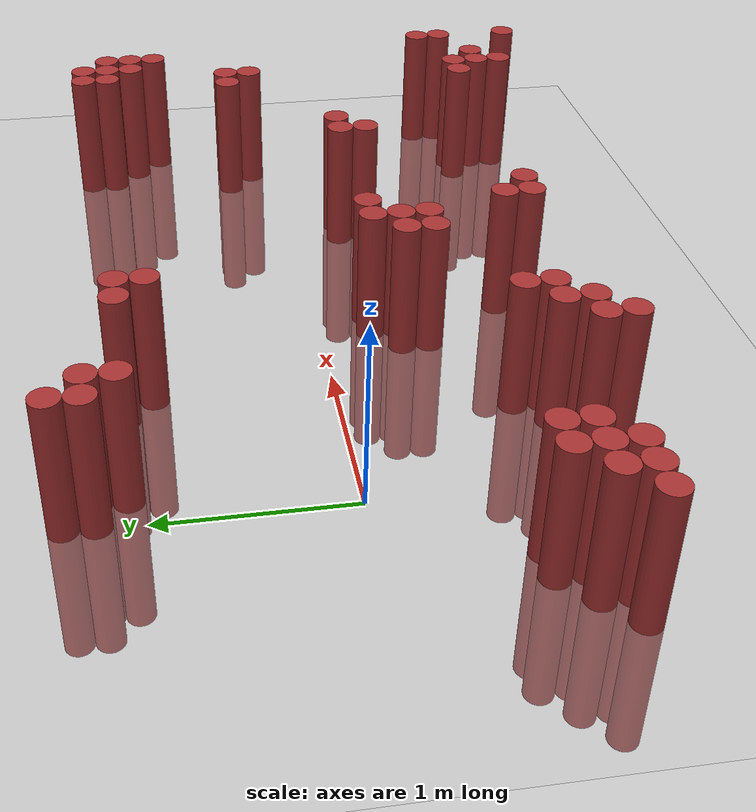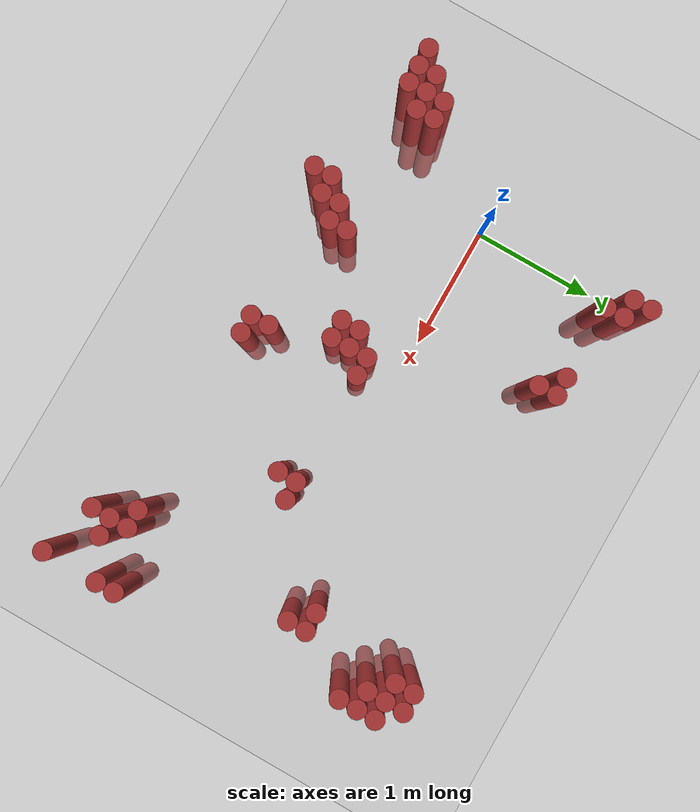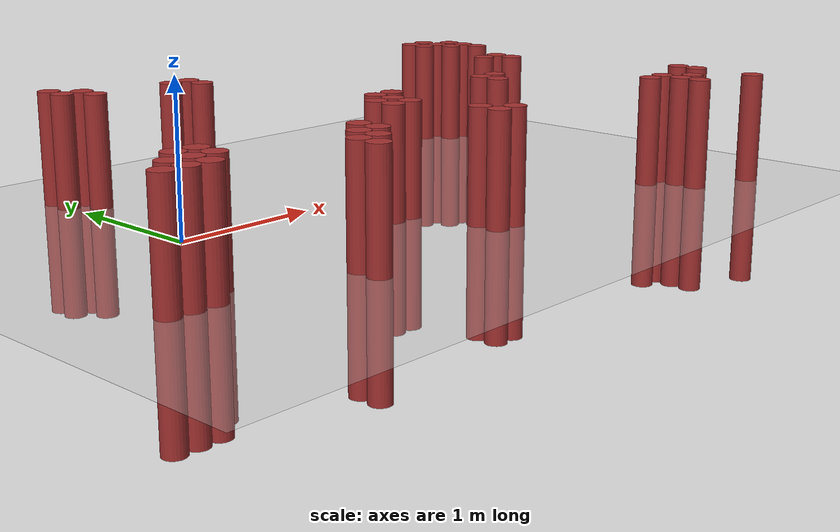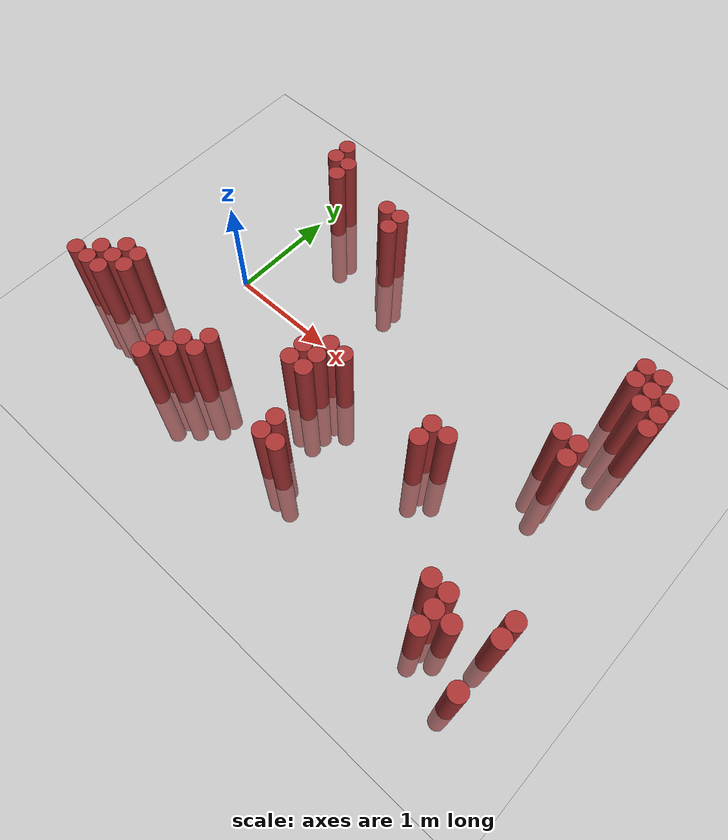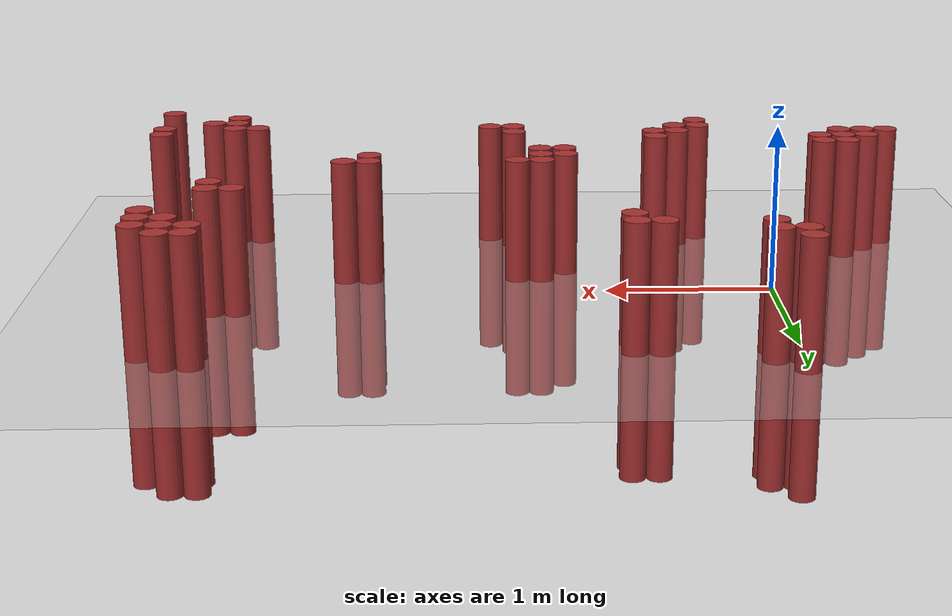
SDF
<sdf version="1.6">
 <world name="default">
  <model name="ground_plane">
   <static>1</static>
   <link name="link">
    <collision name="collision">
     <geometry><plane><normal>0 0 1</normal><size>100 100</size></plane></geometry>
     <surface><friction><ode><mu>100</mu><mu2>50</mu2></ode></friction></surface>
    </collision>
    <visual name="visual">
     <cast_shadows>0</cast_shadows>
     <geometry><plane><normal>0 0 1</normal><size>100 100</size></plane></geometry>
     <material>
      <script><uri>file://media/materials/scripts/gazebo.material</uri><name>Gazebo/Grey</name></script>
     </material>
    </visual>
   </link>
  </model>
  <model name="unit_cylinder_361">
   <static>1</static>
   <pose>-0.875000 -1.025000 0.000000 0.000000 0.000000 0.000000</pose>
   <link name="link">
    <inertial>
     <mass>1</mass>
     <inertia><ixx>0.145833</ixx><ixy>0</ixy><ixz>0</ixz><iyy>0.145833</iyy><iyz>0</iyz><izz>0.125</izz></inertia>
    </inertial>
    <collision name="collision">
     <geometry><cylinder><radius>0.075000</radius><length>1.5</length></cylinder></geometry>
    </collision>
    <visual name="visual">
     <geometry><cylinder><radius>0.075000</radius><length>1.5</length></cylinder></geometry>
     <material>
      <ambient>0.648000 0.192000 0.192000 1</ambient>
      <diffuse>0.648000 0.192000 0.192000 1</diffuse>
     </material>
     <material>
      <script><name>Gazebo/Grey</name><uri>file://media/materials/scripts/gazebo.material</uri></script>
     </material>
    </visual>
   </link>
  </model>
  <model name="unit_cylinder_365">
   <static>1</static>
   <pose>-0.725000 -1.025000 0.000000 0.000000 0.000000 0.000000</pose>
   <link name="link">
    <inertial>
     <mass>1</mass>
     <inertia><ixx>0.145833</ixx><ixy>0</ixy><ixz>0</ixz><iyy>0.145833</iyy><iyz>0</iyz><izz>0.125</izz></inertia>
    </inertial>
    <collision name="collision">
     <geometry><cylinder><radius>0.075000</radius><length>1.5</length></cylinder></geometry>
    </collision>
    <visual name="visual">
     <geometry><cylinder><radius>0.075000</radius><length>1.5</length></cylinder></geometry>
     <material>
      <ambient>0.648000 0.192000 0.192000 1</ambient>
      <diffuse>0.648000 0.192000 0.192000 1</diffuse>
     </material>
     <material>
      <script><name>Gazebo/Grey</name><uri>file://media/materials/scripts/gazebo.material</uri></script>
     </material>
    </visual>
   </link>
  </model>
  <model name="unit_cylinder_366">
   <static>1</static>
   <pose>-0.725000 -0.875000 0.000000 0.000000 0.000000 0.000000</pose>
   <link name="link">
    <inertial>
     <mass>1</mass>
     <inertia><ixx>0.145833</ixx><ixy>0</ixy><ixz>0</ixz><iyy>0.145833</iyy><iyz>0</iyz><izz>0.125</izz></inertia>
    </inertial>
    <collision name="collision">
     <geometry><cylinder><radius>0.075000</radius><length>1.5</length></cylinder></geometry>
    </collision>
    <visual name="visual">
     <geometry><cylinder><radius>0.075000</radius><length>1.5</length></cylinder></geometry>
     <material>
      <ambient>0.648000 0.192000 0.192000 1</ambient>
      <diffuse>0.648000 0.192000 0.192000 1</diffuse>
     </material>
     <material>
      <script><name>Gazebo/Grey</name><uri>file://media/materials/scripts/gazebo.material</uri></script>
     </material>
    </visual>
   </link>
  </model>
  <model name="unit_cylinder_368">
   <static>1</static>
   <pose>-0.575000 -1.025000 0.000000 0.000000 0.000000 0.000000</pose>
   <link name="link">
    <inertial>
     <mass>1</mass>
     <inertia><ixx>0.145833</ixx><ixy>0</ixy><ixz>0</ixz><iyy>0.145833</iyy><iyz>0</iyz><izz>0.125</izz></inertia>
    </inertial>
    <collision name="collision">
     <geometry><cylinder><radius>0.075000</radius><length>1.5</length></cylinder></geometry>
    </collision>
    <visual name="visual">
     <geometry><cylinder><radius>0.075000</radius><length>1.5</length></cylinder></geometry>
     <material>
      <ambient>0.648000 0.192000 0.192000 1</ambient>
      <diffuse>0.648000 0.192000 0.192000 1</diffuse>
     </material>
     <material>
      <script><name>Gazebo/Grey</name><uri>file://media/materials/scripts/gazebo.material</uri></script>
     </material>
    </visual>
   </link>
  </model>
  <model name="unit_cylinder_369">
   <static>1</static>
   <pose>-0.575000 -0.875000 0.000000 0.000000 0.000000 0.000000</pose>
   <link name="link">
    <inertial>
     <mass>1</mass>
     <inertia><ixx>0.145833</ixx><ixy>0</ixy><ixz>0</ixz><iyy>0.145833</iyy><iyz>0</iyz><izz>0.125</izz></inertia>
    </inertial>
    <collision name="collision">
     <geometry><cylinder><radius>0.075000</radius><length>1.5</length></cylinder></geometry>
    </collision>
    <visual name="visual">
     <geometry><cylinder><radius>0.075000</radius><length>1.5</length></cylinder></geometry>
     <material>
      <ambient>0.648000 0.192000 0.192000 1</ambient>
      <diffuse>0.648000 0.192000 0.192000 1</diffuse>
     </material>
     <material>
      <script><name>Gazebo/Grey</name><uri>file://media/materials/scripts/gazebo.material</uri></script>
     </material>
    </visual>
   </link>
  </model>
  <model name="unit_cylinder_370">
   <static>1</static>
   <pose>-0.575000 -0.725000 0.000000 0.000000 0.000000 0.000000</pose>
   <link name="link">
    <inertial>
     <mass>1</mass>
     <inertia><ixx>0.145833</ixx><ixy>0</ixy><ixz>0</ixz><iyy>0.145833</iyy><iyz>0</iyz><izz>0.125</izz></inertia>
    </inertial>
    <collision name="collision">
     <geometry><cylinder><radius>0.075000</radius><length>1.5</length></cylinder></geometry>
    </collision>
    <visual name="visual">
     <geometry><cylinder><radius>0.075000</radius><length>1.5</length></cylinder></geometry>
     <material>
      <ambient>0.648000 0.192000 0.192000 1</ambient>
      <diffuse>0.648000 0.192000 0.192000 1</diffuse>
     </material>
     <material>
      <script><name>Gazebo/Grey</name><uri>file://media/materials/scripts/gazebo.material</uri></script>
     </material>
    </visual>
   </link>
  </model>
  <model name="unit_cylinder_372">
   <static>1</static>
   <pose>-0.425000 -0.875000 0.000000 0.000000 0.000000 0.000000</pose>
   <link name="link">
    <inertial>
     <mass>1</mass>
     <inertia><ixx>0.145833</ixx><ixy>0</ixy><ixz>0</ixz><iyy>0.145833</iyy><iyz>0</iyz><izz>0.125</izz></inertia>
    </inertial>
    <collision name="collision">
     <geometry><cylinder><radius>0.075000</radius><length>1.5</length></cylinder></geometry>
    </collision>
    <visual name="visual">
     <geometry><cylinder><radius>0.075000</radius><length>1.5</length></cylinder></geometry>
     <material>
      <ambient>0.648000 0.192000 0.192000 1</ambient>
      <diffuse>0.648000 0.192000 0.192000 1</diffuse>
     </material>
     <material>
      <script><name>Gazebo/Grey</name><uri>file://media/materials/scripts/gazebo.material</uri></script>
     </material>
    </visual>
   </link>
  </model>
  <model name="unit_cylinder_373">
   <static>1</static>
   <pose>-0.425000 -0.725000 0.000000 0.000000 0.000000 0.000000</pose>
   <link name="link">
    <inertial>
     <mass>1</mass>
     <inertia><ixx>0.145833</ixx><ixy>0</ixy><ixz>0</ixz><iyy>0.145833</iyy><iyz>0</iyz><izz>0.125</izz></inertia>
    </inertial>
    <collision name="collision">
     <geometry><cylinder><radius>0.075000</radius><length>1.5</length></cylinder></geometry>
    </collision>
    <visual name="visual">
     <geometry><cylinder><radius>0.075000</radius><length>1.5</length></cylinder></geometry>
     <material>
      <ambient>0.648000 0.192000 0.192000 1</ambient>
      <diffuse>0.648000 0.192000 0.192000 1</diffuse>
     </material>
     <material>
      <script><name>Gazebo/Grey</name><uri>file://media/materials/scripts/gazebo.material</uri></script>
     </material>
    </visual>
   </link>
  </model>
  <model name="unit_cylinder_379">
   <static>1</static>
   <pose>0.025000 1.225000 0.000000 0.000000 0.000000 0.000000</pose>
   <link name="link">
    <inertial>
     <mass>1</mass>
     <inertia><ixx>0.145833</ixx><ixy>0</ixy><ixz>0</ixz><iyy>0.145833</iyy><iyz>0</iyz><izz>0.125</izz></inertia>
    </inertial>
    <collision name="collision">
     <geometry><cylinder><radius>0.075000</radius><length>1.5</length></cylinder></geometry>
    </collision>
    <visual name="visual">
     <geometry><cylinder><radius>0.075000</radius><length>1.5</length></cylinder></geometry>
     <material>
      <ambient>0.648000 0.192000 0.192000 1</ambient>
      <diffuse>0.648000 0.192000 0.192000 1</diffuse>
     </material>
     <material>
      <script><name>Gazebo/Grey</name><uri>file://media/materials/scripts/gazebo.material</uri></script>
     </material>
    </visual>
   </link>
  </model>
  <model name="unit_cylinder_380">
   <static>1</static>
   <pose>0.025000 1.375000 0.000000 0.000000 0.000000 0.000000</pose>
   <link name="link">
    <inertial>
     <mass>1</mass>
     <inertia><ixx>0.145833</ixx><ixy>0</ixy><ixz>0</ixz><iyy>0.145833</iyy><iyz>0</iyz><izz>0.125</izz></inertia>
    </inertial>
    <collision name="collision">
     <geometry><cylinder><radius>0.075000</radius><length>1.5</length></cylinder></geometry>
    </collision>
    <visual name="visual">
     <geometry><cylinder><radius>0.075000</radius><length>1.5</length></cylinder></geometry>
     <material>
      <ambient>0.648000 0.192000 0.192000 1</ambient>
      <diffuse>0.648000 0.192000 0.192000 1</diffuse>
     </material>
     <material>
      <script><name>Gazebo/Grey</name><uri>file://media/materials/scripts/gazebo.material</uri></script>
     </material>
    </visual>
   </link>
  </model>
  <model name="unit_cylinder_381">
   <static>1</static>
   <pose>0.175000 1.075000 0.000000 0.000000 0.000000 0.000000</pose>
   <link name="link">
    <inertial>
     <mass>1</mass>
     <inertia><ixx>0.145833</ixx><ixy>0</ixy><ixz>0</ixz><iyy>0.145833</iyy><iyz>0</iyz><izz>0.125</izz></inertia>
    </inertial>
    <collision name="collision">
     <geometry><cylinder><radius>0.075000</radius><length>1.5</length></cylinder></geometry>
    </collision>
    <visual name="visual">
     <geometry><cylinder><radius>0.075000</radius><length>1.5</length></cylinder></geometry>
     <material>
      <ambient>0.648000 0.192000 0.192000 1</ambient>
      <diffuse>0.648000 0.192000 0.192000 1</diffuse>
     </material>
     <material>
      <script><name>Gazebo/Grey</name><uri>file://media/materials/scripts/gazebo.material</uri></script>
     </material>
    </visual>
   </link>
  </model>
  <model name="unit_cylinder_382">
   <static>1</static>
   <pose>0.175000 1.225000 0.000000 0.000000 0.000000 0.000000</pose>
   <link name="link">
    <inertial>
     <mass>1</mass>
     <inertia><ixx>0.145833</ixx><ixy>0</ixy><ixz>0</ixz><iyy>0.145833</iyy><iyz>0</iyz><izz>0.125</izz></inertia>
    </inertial>
    <collision name="collision">
     <geometry><cylinder><radius>0.075000</radius><length>1.5</length></cylinder></geometry>
    </collision>
    <visual name="visual">
     <geometry><cylinder><radius>0.075000</radius><length>1.5</length></cylinder></geometry>
     <material>
      <ambient>0.648000 0.192000 0.192000 1</ambient>
      <diffuse>0.648000 0.192000 0.192000 1</diffuse>
     </material>
     <material>
      <script><name>Gazebo/Grey</name><uri>file://media/materials/scripts/gazebo.material</uri></script>
     </material>
    </visual>
   </link>
  </model>
  <model name="unit_cylinder_384">
   <static>1</static>
   <pose>0.325000 -1.325000 0.000000 0.000000 0.000000 0.000000</pose>
   <link name="link">
    <inertial>
     <mass>1</mass>
     <inertia><ixx>0.145833</ixx><ixy>0</ixy><ixz>0</ixz><iyy>0.145833</iyy><iyz>0</iyz><izz>0.125</izz></inertia>
    </inertial>
    <collision name="collision">
     <geometry><cylinder><radius>0.075000</radius><length>1.5</length></cylinder></geometry>
    </collision>
    <visual name="visual">
     <geometry><cylinder><radius>0.075000</radius><length>1.5</length></cylinder></geometry>
     <material>
      <ambient>0.648000 0.192000 0.192000 1</ambient>
      <diffuse>0.648000 0.192000 0.192000 1</diffuse>
     </material>
     <material>
      <script><name>Gazebo/Grey</name><uri>file://media/materials/scripts/gazebo.material</uri></script>
     </material>
    </visual>
   </link>
  </model>
  <model name="unit_cylinder_385">
   <static>1</static>
   <pose>0.325000 -1.175000 0.000000 0.000000 0.000000 0.000000</pose>
   <link name="link">
    <inertial>
     <mass>1</mass>
     <inertia><ixx>0.145833</ixx><ixy>0</ixy><ixz>0</ixz><iyy>0.145833</iyy><iyz>0</iyz><izz>0.125</izz></inertia>
    </inertial>
    <collision name="collision">
     <geometry><cylinder><radius>0.075000</radius><length>1.5</length></cylinder></geometry>
    </collision>
    <visual name="visual">
     <geometry><cylinder><radius>0.075000</radius><length>1.5</length></cylinder></geometry>
     <material>
      <ambient>0.648000 0.192000 0.192000 1</ambient>
      <diffuse>0.648000 0.192000 0.192000 1</diffuse>
     </material>
     <material>
      <script><name>Gazebo/Grey</name><uri>file://media/materials/scripts/gazebo.material</uri></script>
     </material>
    </visual>
   </link>
  </model>
  <model name="unit_cylinder_388">
   <static>1</static>
   <pose>0.475000 -1.175000 0.000000 0.000000 0.000000 0.000000</pose>
   <link name="link">
    <inertial>
     <mass>1</mass>
     <inertia><ixx>0.145833</ixx><ixy>0</ixy><ixz>0</ixz><iyy>0.145833</iyy><iyz>0</iyz><izz>0.125</izz></inertia>
    </inertial>
    <collision name="collision">
     <geometry><cylinder><radius>0.075000</radius><length>1.5</length></cylinder></geometry>
    </collision>
    <visual name="visual">
     <geometry><cylinder><radius>0.075000</radius><length>1.5</length></cylinder></geometry>
     <material>
      <ambient>0.648000 0.192000 0.192000 1</ambient>
      <diffuse>0.648000 0.192000 0.192000 1</diffuse>
     </material>
     <material>
      <script><name>Gazebo/Grey</name><uri>file://media/materials/scripts/gazebo.material</uri></script>
     </material>
    </visual>
   </link>
  </model>
  <model name="unit_cylinder_389">
   <static>1</static>
   <pose>0.475000 -1.025000 0.000000 0.000000 0.000000 0.000000</pose>
   <link name="link">
    <inertial>
     <mass>1</mass>
     <inertia><ixx>0.145833</ixx><ixy>0</ixy><ixz>0</ixz><iyy>0.145833</iyy><iyz>0</iyz><izz>0.125</izz></inertia>
    </inertial>
    <collision name="collision">
     <geometry><cylinder><radius>0.075000</radius><length>1.5</length></cylinder></geometry>
    </collision>
    <visual name="visual">
     <geometry><cylinder><radius>0.075000</radius><length>1.5</length></cylinder></geometry>
     <material>
      <ambient>0.648000 0.192000 0.192000 1</ambient>
      <diffuse>0.648000 0.192000 0.192000 1</diffuse>
     </material>
     <material>
      <script><name>Gazebo/Grey</name><uri>file://media/materials/scripts/gazebo.material</uri></script>
     </material>
    </visual>
   </link>
  </model>
  <model name="unit_cylinder_392">
   <static>1</static>
   <pose>0.625000 -1.025000 0.000000 0.000000 0.000000 0.000000</pose>
   <link name="link">
    <inertial>
     <mass>1</mass>
     <inertia><ixx>0.145833</ixx><ixy>0</ixy><ixz>0</ixz><iyy>0.145833</iyy><iyz>0</iyz><izz>0.125</izz></inertia>
    </inertial>
    <collision name="collision">
     <geometry><cylinder><radius>0.075000</radius><length>1.5</length></cylinder></geometry>
    </collision>
    <visual name="visual">
     <geometry><cylinder><radius>0.075000</radius><length>1.5</length></cylinder></geometry>
     <material>
      <ambient>0.648000 0.192000 0.192000 1</ambient>
      <diffuse>0.648000 0.192000 0.192000 1</diffuse>
     </material>
     <material>
      <script><name>Gazebo/Grey</name><uri>file://media/materials/scripts/gazebo.material</uri></script>
     </material>
    </visual>
   </link>
  </model>
  <model name="unit_cylinder_393">
   <static>1</static>
   <pose>0.625000 -0.875000 0.000000 0.000000 0.000000 0.000000</pose>
   <link name="link">
    <inertial>
     <mass>1</mass>
     <inertia><ixx>0.145833</ixx><ixy>0</ixy><ixz>0</ixz><iyy>0.145833</iyy><iyz>0</iyz><izz>0.125</izz></inertia>
    </inertial>
    <collision name="collision">
     <geometry><cylinder><radius>0.075000</radius><length>1.5</length></cylinder></geometry>
    </collision>
    <visual name="visual">
     <geometry><cylinder><radius>0.075000</radius><length>1.5</length></cylinder></geometry>
     <material>
      <ambient>0.648000 0.192000 0.192000 1</ambient>
      <diffuse>0.648000 0.192000 0.192000 1</diffuse>
     </material>
     <material>
      <script><name>Gazebo/Grey</name><uri>file://media/materials/scripts/gazebo.material</uri></script>
     </material>
    </visual>
   </link>
  </model>
  <model name="unit_cylinder_397">
   <static>1</static>
   <pose>0.775000 1.075000 0.000000 0.000000 0.000000 0.000000</pose>
   <link name="link">
    <inertial>
     <mass>1</mass>
     <inertia><ixx>0.145833</ixx><ixy>0</ixy><ixz>0</ixz><iyy>0.145833</iyy><iyz>0</iyz><izz>0.125</izz></inertia>
    </inertial>
    <collision name="collision">
     <geometry><cylinder><radius>0.075000</radius><length>1.5</length></cylinder></geometry>
    </collision>
    <visual name="visual">
     <geometry><cylinder><radius>0.075000</radius><length>1.5</length></cylinder></geometry>
     <material>
      <ambient>0.648000 0.192000 0.192000 1</ambient>
      <diffuse>0.648000 0.192000 0.192000 1</diffuse>
     </material>
     <material>
      <script><name>Gazebo/Grey</name><uri>file://media/materials/scripts/gazebo.material</uri></script>
     </material>
    </visual>
   </link>
  </model>
  <model name="unit_cylinder_401">
   <static>1</static>
   <pose>0.925000 0.925000 0.000000 0.000000 0.000000 0.000000</pose>
   <link name="link">
    <inertial>
     <mass>1</mass>
     <inertia><ixx>0.145833</ixx><ixy>0</ixy><ixz>0</ixz><iyy>0.145833</iyy><iyz>0</iyz><izz>0.125</izz></inertia>
    </inertial>
    <collision name="collision">
     <geometry><cylinder><radius>0.075000</radius><length>1.5</length></cylinder></geometry>
    </collision>
    <visual name="visual">
     <geometry><cylinder><radius>0.075000</radius><length>1.5</length></cylinder></geometry>
     <material>
      <ambient>0.648000 0.192000 0.192000 1</ambient>
      <diffuse>0.648000 0.192000 0.192000 1</diffuse>
     </material>
     <material>
      <script><name>Gazebo/Grey</name><uri>file://media/materials/scripts/gazebo.material</uri></script>
     </material>
    </visual>
   </link>
  </model>
  <model name="unit_cylinder_402">
   <static>1</static>
   <pose>0.925000 1.075000 0.000000 0.000000 0.000000 0.000000</pose>
   <link name="link">
    <inertial>
     <mass>1</mass>
     <inertia><ixx>0.145833</ixx><ixy>0</ixy><ixz>0</ixz><iyy>0.145833</iyy><iyz>0</iyz><izz>0.125</izz></inertia>
    </inertial>
    <collision name="collision">
     <geometry><cylinder><radius>0.075000</radius><length>1.5</length></cylinder></geometry>
    </collision>
    <visual name="visual">
     <geometry><cylinder><radius>0.075000</radius><length>1.5</length></cylinder></geometry>
     <material>
      <ambient>0.648000 0.192000 0.192000 1</ambient>
      <diffuse>0.648000 0.192000 0.192000 1</diffuse>
     </material>
     <material>
      <script><name>Gazebo/Grey</name><uri>file://media/materials/scripts/gazebo.material</uri></script>
     </material>
    </visual>
   </link>
  </model>
  <model name="unit_cylinder_409">
   <static>1</static>
   <pose>1.225000 -0.575000 0.000000 0.000000 0.000000 0.000000</pose>
   <link name="link">
    <inertial>
     <mass>1</mass>
     <inertia><ixx>0.145833</ixx><ixy>0</ixy><ixz>0</ixz><iyy>0.145833</iyy><iyz>0</iyz><izz>0.125</izz></inertia>
    </inertial>
    <collision name="collision">
     <geometry><cylinder><radius>0.075000</radius><length>1.5</length></cylinder></geometry>
    </collision>
    <visual name="visual">
     <geometry><cylinder><radius>0.075000</radius><length>1.5</length></cylinder></geometry>
     <material>
      <ambient>0.648000 0.192000 0.192000 1</ambient>
      <diffuse>0.648000 0.192000 0.192000 1</diffuse>
     </material>
     <material>
      <script><name>Gazebo/Grey</name><uri>file://media/materials/scripts/gazebo.material</uri></script>
     </material>
    </visual>
   </link>
  </model>
  <model name="unit_cylinder_410">
   <static>1</static>
   <pose>1.225000 -0.425000 0.000000 0.000000 0.000000 0.000000</pose>
   <link name="link">
    <inertial>
     <mass>1</mass>
     <inertia><ixx>0.145833</ixx><ixy>0</ixy><ixz>0</ixz><iyy>0.145833</iyy><iyz>0</iyz><izz>0.125</izz></inertia>
    </inertial>
    <collision name="collision">
     <geometry><cylinder><radius>0.075000</radius><length>1.5</length></cylinder></geometry>
    </collision>
    <visual name="visual">
     <geometry><cylinder><radius>0.075000</radius><length>1.5</length></cylinder></geometry>
     <material>
      <ambient>0.648000 0.192000 0.192000 1</ambient>
      <diffuse>0.648000 0.192000 0.192000 1</diffuse>
     </material>
     <material>
      <script><name>Gazebo/Grey</name><uri>file://media/materials/scripts/gazebo.material</uri></script>
     </material>
    </visual>
   </link>
  </model>
  <model name="unit_cylinder_413">
   <static>1</static>
   <pose>1.375000 -0.575000 0.000000 0.000000 0.000000 0.000000</pose>
   <link name="link">
    <inertial>
     <mass>1</mass>
     <inertia><ixx>0.145833</ixx><ixy>0</ixy><ixz>0</ixz><iyy>0.145833</iyy><iyz>0</iyz><izz>0.125</izz></inertia>
    </inertial>
    <collision name="collision">
     <geometry><cylinder><radius>0.075000</radius><length>1.5</length></cylinder></geometry>
    </collision>
    <visual name="visual">
     <geometry><cylinder><radius>0.075000</radius><length>1.5</length></cylinder></geometry>
     <material>
      <ambient>0.648000 0.192000 0.192000 1</ambient>
      <diffuse>0.648000 0.192000 0.192000 1</diffuse>
     </material>
     <material>
      <script><name>Gazebo/Grey</name><uri>file://media/materials/scripts/gazebo.material</uri></script>
     </material>
    </visual>
   </link>
  </model>
  <model name="unit_cylinder_414">
   <static>1</static>
   <pose>1.375000 -0.425000 0.000000 0.000000 0.000000 0.000000</pose>
   <link name="link">
    <inertial>
     <mass>1</mass>
     <inertia><ixx>0.145833</ixx><ixy>0</ixy><ixz>0</ixz><iyy>0.145833</iyy><iyz>0</iyz><izz>0.125</izz></inertia>
    </inertial>
    <collision name="collision">
     <geometry><cylinder><radius>0.075000</radius><length>1.5</length></cylinder></geometry>
    </collision>
    <visual name="visual">
     <geometry><cylinder><radius>0.075000</radius><length>1.5</length></cylinder></geometry>
     <material>
      <ambient>0.648000 0.192000 0.192000 1</ambient>
      <diffuse>0.648000 0.192000 0.192000 1</diffuse>
     </material>
     <material>
      <script><name>Gazebo/Grey</name><uri>file://media/materials/scripts/gazebo.material</uri></script>
     </material>
    </visual>
   </link>
  </model>
  <model name="unit_cylinder_415">
   <static>1</static>
   <pose>1.375000 -0.275000 0.000000 0.000000 0.000000 0.000000</pose>
   <link name="link">
    <inertial>
     <mass>1</mass>
     <inertia><ixx>0.145833</ixx><ixy>0</ixy><ixz>0</ixz><iyy>0.145833</iyy><iyz>0</iyz><izz>0.125</izz></inertia>
    </inertial>
    <collision name="collision">
     <geometry><cylinder><radius>0.075000</radius><length>1.5</length></cylinder></geometry>
    </collision>
    <visual name="visual">
     <geometry><cylinder><radius>0.075000</radius><length>1.5</length></cylinder></geometry>
     <material>
      <ambient>0.648000 0.192000 0.192000 1</ambient>
      <diffuse>0.648000 0.192000 0.192000 1</diffuse>
     </material>
     <material>
      <script><name>Gazebo/Grey</name><uri>file://media/materials/scripts/gazebo.material</uri></script>
     </material>
    </visual>
   </link>
  </model>
  <model name="unit_cylinder_417">
   <static>1</static>
   <pose>1.525000 -1.175000 0.000000 0.000000 0.000000 0.000000</pose>
   <link name="link">
    <inertial>
     <mass>1</mass>
     <inertia><ixx>0.145833</ixx><ixy>0</ixy><ixz>0</ixz><iyy>0.145833</iyy><iyz>0</iyz><izz>0.125</izz></inertia>
    </inertial>
    <collision name="collision">
     <geometry><cylinder><radius>0.075000</radius><length>1.5</length></cylinder></geometry>
    </collision>
    <visual name="visual">
     <geometry><cylinder><radius>0.075000</radius><length>1.5</length></cylinder></geometry>
     <material>
      <ambient>0.648000 0.192000 0.192000 1</ambient>
      <diffuse>0.648000 0.192000 0.192000 1</diffuse>
     </material>
     <material>
      <script><name>Gazebo/Grey</name><uri>file://media/materials/scripts/gazebo.material</uri></script>
     </material>
    </visual>
   </link>
  </model>
  <model name="unit_cylinder_418">
   <static>1</static>
   <pose>1.525000 -1.025000 0.000000 0.000000 0.000000 0.000000</pose>
   <link name="link">
    <inertial>
     <mass>1</mass>
     <inertia><ixx>0.145833</ixx><ixy>0</ixy><ixz>0</ixz><iyy>0.145833</iyy><iyz>0</iyz><izz>0.125</izz></inertia>
    </inertial>
    <collision name="collision">
     <geometry><cylinder><radius>0.075000</radius><length>1.5</length></cylinder></geometry>
    </collision>
    <visual name="visual">
     <geometry><cylinder><radius>0.075000</radius><length>1.5</length></cylinder></geometry>
     <material>
      <ambient>0.648000 0.192000 0.192000 1</ambient>
      <diffuse>0.648000 0.192000 0.192000 1</diffuse>
     </material>
     <material>
      <script><name>Gazebo/Grey</name><uri>file://media/materials/scripts/gazebo.material</uri></script>
     </material>
    </visual>
   </link>
  </model>
  <model name="unit_cylinder_419">
   <static>1</static>
   <pose>1.525000 -0.275000 0.000000 0.000000 0.000000 0.000000</pose>
   <link name="link">
    <inertial>
     <mass>1</mass>
     <inertia><ixx>0.145833</ixx><ixy>0</ixy><ixz>0</ixz><iyy>0.145833</iyy><iyz>0</iyz><izz>0.125</izz></inertia>
    </inertial>
    <collision name="collision">
     <geometry><cylinder><radius>0.075000</radius><length>1.5</length></cylinder></geometry>
    </collision>
    <visual name="visual">
     <geometry><cylinder><radius>0.075000</radius><length>1.5</length></cylinder></geometry>
     <material>
      <ambient>0.648000 0.192000 0.192000 1</ambient>
      <diffuse>0.648000 0.192000 0.192000 1</diffuse>
     </material>
     <material>
      <script><name>Gazebo/Grey</name><uri>file://media/materials/scripts/gazebo.material</uri></script>
     </material>
    </visual>
   </link>
  </model>
  <model name="unit_cylinder_420">
   <static>1</static>
   <pose>1.675000 -1.175000 0.000000 0.000000 0.000000 0.000000</pose>
   <link name="link">
    <inertial>
     <mass>1</mass>
     <inertia><ixx>0.145833</ixx><ixy>0</ixy><ixz>0</ixz><iyy>0.145833</iyy><iyz>0</iyz><izz>0.125</izz></inertia>
    </inertial>
    <collision name="collision">
     <geometry><cylinder><radius>0.075000</radius><length>1.5</length></cylinder></geometry>
    </collision>
    <visual name="visual">
     <geometry><cylinder><radius>0.075000</radius><length>1.5</length></cylinder></geometry>
     <material>
      <ambient>0.648000 0.192000 0.192000 1</ambient>
      <diffuse>0.648000 0.192000 0.192000 1</diffuse>
     </material>
     <material>
      <script><name>Gazebo/Grey</name><uri>file://media/materials/scripts/gazebo.material</uri></script>
     </material>
    </visual>
   </link>
  </model>
  <model name="unit_cylinder_422">
   <static>1</static>
   <pose>2.425000 -0.425000 0.000000 0.000000 0.000000 0.000000</pose>
   <link name="link">
    <inertial>
     <mass>1</mass>
     <inertia><ixx>0.145833</ixx><ixy>0</ixy><ixz>0</ixz><iyy>0.145833</iyy><iyz>0</iyz><izz>0.125</izz></inertia>
    </inertial>
    <collision name="collision">
     <geometry><cylinder><radius>0.075000</radius><length>1.5</length></cylinder></geometry>
    </collision>
    <visual name="visual">
     <geometry><cylinder><radius>0.075000</radius><length>1.5</length></cylinder></geometry>
     <material>
      <ambient>0.648000 0.192000 0.192000 1</ambient>
      <diffuse>0.648000 0.192000 0.192000 1</diffuse>
     </material>
     <material>
      <script><name>Gazebo/Grey</name><uri>file://media/materials/scripts/gazebo.material</uri></script>
     </material>
    </visual>
   </link>
  </model>
  <model name="unit_cylinder_423">
   <static>1</static>
   <pose>2.425000 -0.275000 0.000000 0.000000 0.000000 0.000000</pose>
   <link name="link">
    <inertial>
     <mass>1</mass>
     <inertia><ixx>0.145833</ixx><ixy>0</ixy><ixz>0</ixz><iyy>0.145833</iyy><iyz>0</iyz><izz>0.125</izz></inertia>
    </inertial>
    <collision name="collision">
     <geometry><cylinder><radius>0.075000</radius><length>1.5</length></cylinder></geometry>
    </collision>
    <visual name="visual">
     <geometry><cylinder><radius>0.075000</radius><length>1.5</length></cylinder></geometry>
     <material>
      <ambient>0.648000 0.192000 0.192000 1</ambient>
      <diffuse>0.648000 0.192000 0.192000 1</diffuse>
     </material>
     <material>
      <script><name>Gazebo/Grey</name><uri>file://media/materials/scripts/gazebo.material</uri></script>
     </material>
    </visual>
   </link>
  </model>
  <model name="unit_cylinder_426">
   <static>1</static>
   <pose>2.575000 -0.275000 0.000000 0.000000 0.000000 0.000000</pose>
   <link name="link">
    <inertial>
     <mass>1</mass>
     <inertia><ixx>0.145833</ixx><ixy>0</ixy><ixz>0</ixz><iyy>0.145833</iyy><iyz>0</iyz><izz>0.125</izz></inertia>
    </inertial>
    <collision name="collision">
     <geometry><cylinder><radius>0.075000</radius><length>1.5</length></cylinder></geometry>
    </collision>
    <visual name="visual">
     <geometry><cylinder><radius>0.075000</radius><length>1.5</length></cylinder></geometry>
     <material>
      <ambient>0.648000 0.192000 0.192000 1</ambient>
      <diffuse>0.648000 0.192000 0.192000 1</diffuse>
     </material>
     <material>
      <script><name>Gazebo/Grey</name><uri>file://media/materials/scripts/gazebo.material</uri></script>
     </material>
    </visual>
   </link>
  </model>
  <model name="unit_cylinder_431">
   <static>1</static>
   <pose>3.175000 -1.175000 0.000000 0.000000 0.000000 0.000000</pose>
   <link name="link">
    <inertial>
     <mass>1</mass>
     <inertia><ixx>0.145833</ixx><ixy>0</ixy><ixz>0</ixz><iyy>0.145833</iyy><iyz>0</iyz><izz>0.125</izz></inertia>
    </inertial>
    <collision name="collision">
     <geometry><cylinder><radius>0.075000</radius><length>1.5</length></cylinder></geometry>
    </collision>
    <visual name="visual">
     <geometry><cylinder><radius>0.075000</radius><length>1.5</length></cylinder></geometry>
     <material>
      <ambient>0.648000 0.192000 0.192000 1</ambient>
      <diffuse>0.648000 0.192000 0.192000 1</diffuse>
     </material>
     <material>
      <script><name>Gazebo/Grey</name><uri>file://media/materials/scripts/gazebo.material</uri></script>
     </material>
    </visual>
   </link>
  </model>
  <model name="unit_cylinder_432">
   <static>1</static>
   <pose>3.175000 0.325000 0.000000 0.000000 0.000000 0.000000</pose>
   <link name="link">
    <inertial>
     <mass>1</mass>
     <inertia><ixx>0.145833</ixx><ixy>0</ixy><ixz>0</ixz><iyy>0.145833</iyy><iyz>0</iyz><izz>0.125</izz></inertia>
    </inertial>
    <collision name="collision">
     <geometry><cylinder><radius>0.075000</radius><length>1.5</length></cylinder></geometry>
    </collision>
    <visual name="visual">
     <geometry><cylinder><radius>0.075000</radius><length>1.5</length></cylinder></geometry>
     <material>
      <ambient>0.648000 0.192000 0.192000 1</ambient>
      <diffuse>0.648000 0.192000 0.192000 1</diffuse>
     </material>
     <material>
      <script><name>Gazebo/Grey</name><uri>file://media/materials/scripts/gazebo.material</uri></script>
     </material>
    </visual>
   </link>
  </model>
  <model name="unit_cylinder_433">
   <static>1</static>
   <pose>3.325000 -1.475000 0.000000 0.000000 0.000000 0.000000</pose>
   <link name="link">
    <inertial>
     <mass>1</mass>
     <inertia><ixx>0.145833</ixx><ixy>0</ixy><ixz>0</ixz><iyy>0.145833</iyy><iyz>0</iyz><izz>0.125</izz></inertia>
    </inertial>
    <collision name="collision">
     <geometry><cylinder><radius>0.075000</radius><length>1.5</length></cylinder></geometry>
    </collision>
    <visual name="visual">
     <geometry><cylinder><radius>0.075000</radius><length>1.5</length></cylinder></geometry>
     <material>
      <ambient>0.648000 0.192000 0.192000 1</ambient>
      <diffuse>0.648000 0.192000 0.192000 1</diffuse>
     </material>
     <material>
      <script><name>Gazebo/Grey</name><uri>file://media/materials/scripts/gazebo.material</uri></script>
     </material>
    </visual>
   </link>
  </model>
  <model name="unit_cylinder_434">
   <static>1</static>
   <pose>3.325000 -1.325000 0.000000 0.000000 0.000000 0.000000</pose>
   <link name="link">
    <inertial>
     <mass>1</mass>
     <inertia><ixx>0.145833</ixx><ixy>0</ixy><ixz>0</ixz><iyy>0.145833</iyy><iyz>0</iyz><izz>0.125</izz></inertia>
    </inertial>
    <collision name="collision">
     <geometry><cylinder><radius>0.075000</radius><length>1.5</length></cylinder></geometry>
    </collision>
    <visual name="visual">
     <geometry><cylinder><radius>0.075000</radius><length>1.5</length></cylinder></geometry>
     <material>
      <ambient>0.648000 0.192000 0.192000 1</ambient>
      <diffuse>0.648000 0.192000 0.192000 1</diffuse>
     </material>
     <material>
      <script><name>Gazebo/Grey</name><uri>file://media/materials/scripts/gazebo.material</uri></script>
     </material>
    </visual>
   </link>
  </model>
  <model name="unit_cylinder_435">
   <static>1</static>
   <pose>3.325000 -1.175000 0.000000 0.000000 0.000000 0.000000</pose>
   <link name="link">
    <inertial>
     <mass>1</mass>
     <inertia><ixx>0.145833</ixx><ixy>0</ixy><ixz>0</ixz><iyy>0.145833</iyy><iyz>0</iyz><izz>0.125</izz></inertia>
    </inertial>
    <collision name="collision">
     <geometry><cylinder><radius>0.075000</radius><length>1.5</length></cylinder></geometry>
    </collision>
    <visual name="visual">
     <geometry><cylinder><radius>0.075000</radius><length>1.5</length></cylinder></geometry>
     <material>
      <ambient>0.648000 0.192000 0.192000 1</ambient>
      <diffuse>0.648000 0.192000 0.192000 1</diffuse>
     </material>
     <material>
      <script><name>Gazebo/Grey</name><uri>file://media/materials/scripts/gazebo.material</uri></script>
     </material>
    </visual>
   </link>
  </model>
  <model name="unit_cylinder_436">
   <static>1</static>
   <pose>3.325000 0.175000 0.000000 0.000000 0.000000 0.000000</pose>
   <link name="link">
    <inertial>
     <mass>1</mass>
     <inertia><ixx>0.145833</ixx><ixy>0</ixy><ixz>0</ixz><iyy>0.145833</iyy><iyz>0</iyz><izz>0.125</izz></inertia>
    </inertial>
    <collision name="collision">
     <geometry><cylinder><radius>0.075000</radius><length>1.5</length></cylinder></geometry>
    </collision>
    <visual name="visual">
     <geometry><cylinder><radius>0.075000</radius><length>1.5</length></cylinder></geometry>
     <material>
      <ambient>0.648000 0.192000 0.192000 1</ambient>
      <diffuse>0.648000 0.192000 0.192000 1</diffuse>
     </material>
     <material>
      <script><name>Gazebo/Grey</name><uri>file://media/materials/scripts/gazebo.material</uri></script>
     </material>
    </visual>
   </link>
  </model>
  <model name="unit_cylinder_437">
   <static>1</static>
   <pose>3.325000 0.325000 0.000000 0.000000 0.000000 0.000000</pose>
   <link name="link">
    <inertial>
     <mass>1</mass>
     <inertia><ixx>0.145833</ixx><ixy>0</ixy><ixz>0</ixz><iyy>0.145833</iyy><iyz>0</iyz><izz>0.125</izz></inertia>
    </inertial>
    <collision name="collision">
     <geometry><cylinder><radius>0.075000</radius><length>1.5</length></cylinder></geometry>
    </collision>
    <visual name="visual">
     <geometry><cylinder><radius>0.075000</radius><length>1.5</length></cylinder></geometry>
     <material>
      <ambient>0.648000 0.192000 0.192000 1</ambient>
      <diffuse>0.648000 0.192000 0.192000 1</diffuse>
     </material>
     <material>
      <script><name>Gazebo/Grey</name><uri>file://media/materials/scripts/gazebo.material</uri></script>
     </material>
    </visual>
   </link>
  </model>
  <model name="unit_cylinder_438">
   <static>1</static>
   <pose>3.325000 1.075000 0.000000 0.000000 0.000000 0.000000</pose>
   <link name="link">
    <inertial>
     <mass>1</mass>
     <inertia><ixx>0.145833</ixx><ixy>0</ixy><ixz>0</ixz><iyy>0.145833</iyy><iyz>0</iyz><izz>0.125</izz></inertia>
    </inertial>
    <collision name="collision">
     <geometry><cylinder><radius>0.075000</radius><length>1.5</length></cylinder></geometry>
    </collision>
    <visual name="visual">
     <geometry><cylinder><radius>0.075000</radius><length>1.5</length></cylinder></geometry>
     <material>
      <ambient>0.648000 0.192000 0.192000 1</ambient>
      <diffuse>0.648000 0.192000 0.192000 1</diffuse>
     </material>
     <material>
      <script><name>Gazebo/Grey</name><uri>file://media/materials/scripts/gazebo.material</uri></script>
     </material>
    </visual>
   </link>
  </model>
  <model name="unit_cylinder_439">
   <static>1</static>
   <pose>3.325000 1.225000 0.000000 0.000000 0.000000 0.000000</pose>
   <link name="link">
    <inertial>
     <mass>1</mass>
     <inertia><ixx>0.145833</ixx><ixy>0</ixy><ixz>0</ixz><iyy>0.145833</iyy><iyz>0</iyz><izz>0.125</izz></inertia>
    </inertial>
    <collision name="collision">
     <geometry><cylinder><radius>0.075000</radius><length>1.5</length></cylinder></geometry>
    </collision>
    <visual name="visual">
     <geometry><cylinder><radius>0.075000</radius><length>1.5</length></cylinder></geometry>
     <material>
      <ambient>0.648000 0.192000 0.192000 1</ambient>
      <diffuse>0.648000 0.192000 0.192000 1</diffuse>
     </material>
     <material>
      <script><name>Gazebo/Grey</name><uri>file://media/materials/scripts/gazebo.material</uri></script>
     </material>
    </visual>
   </link>
  </model>
  <model name="unit_cylinder_441">
   <static>1</static>
   <pose>3.475000 -1.325000 0.000000 0.000000 0.000000 0.000000</pose>
   <link name="link">
    <inertial>
     <mass>1</mass>
     <inertia><ixx>0.145833</ixx><ixy>0</ixy><ixz>0</ixz><iyy>0.145833</iyy><iyz>0</iyz><izz>0.125</izz></inertia>
    </inertial>
    <collision name="collision">
     <geometry><cylinder><radius>0.075000</radius><length>1.5</length></cylinder></geometry>
    </collision>
    <visual name="visual">
     <geometry><cylinder><radius>0.075000</radius><length>1.5</length></cylinder></geometry>
     <material>
      <ambient>0.648000 0.192000 0.192000 1</ambient>
      <diffuse>0.648000 0.192000 0.192000 1</diffuse>
     </material>
     <material>
      <script><name>Gazebo/Grey</name><uri>file://media/materials/scripts/gazebo.material</uri></script>
     </material>
    </visual>
   </link>
  </model>
  <model name="unit_cylinder_442">
   <static>1</static>
   <pose>3.475000 0.925000 0.000000 0.000000 0.000000 0.000000</pose>
   <link name="link">
    <inertial>
     <mass>1</mass>
     <inertia><ixx>0.145833</ixx><ixy>0</ixy><ixz>0</ixz><iyy>0.145833</iyy><iyz>0</iyz><izz>0.125</izz></inertia>
    </inertial>
    <collision name="collision">
     <geometry><cylinder><radius>0.075000</radius><length>1.5</length></cylinder></geometry>
    </collision>
    <visual name="visual">
     <geometry><cylinder><radius>0.075000</radius><length>1.5</length></cylinder></geometry>
     <material>
      <ambient>0.648000 0.192000 0.192000 1</ambient>
      <diffuse>0.648000 0.192000 0.192000 1</diffuse>
     </material>
     <material>
      <script><name>Gazebo/Grey</name><uri>file://media/materials/scripts/gazebo.material</uri></script>
     </material>
    </visual>
   </link>
  </model>
  <model name="unit_cylinder_443">
   <static>1</static>
   <pose>3.475000 1.075000 0.000000 0.000000 0.000000 0.000000</pose>
   <link name="link">
    <inertial>
     <mass>1</mass>
     <inertia><ixx>0.145833</ixx><ixy>0</ixy><ixz>0</ixz><iyy>0.145833</iyy><iyz>0</iyz><izz>0.125</izz></inertia>
    </inertial>
    <collision name="collision">
     <geometry><cylinder><radius>0.075000</radius><length>1.5</length></cylinder></geometry>
    </collision>
    <visual name="visual">
     <geometry><cylinder><radius>0.075000</radius><length>1.5</length></cylinder></geometry>
     <material>
      <ambient>0.648000 0.192000 0.192000 1</ambient>
      <diffuse>0.648000 0.192000 0.192000 1</diffuse>
     </material>
     <material>
      <script><name>Gazebo/Grey</name><uri>file://media/materials/scripts/gazebo.material</uri></script>
     </material>
    </visual>
   </link>
  </model>
  <model name="unit_cylinder_444">
   <static>1</static>
   <pose>3.475000 1.225000 0.000000 0.000000 0.000000 0.000000</pose>
   <link name="link">
    <inertial>
     <mass>1</mass>
     <inertia><ixx>0.145833</ixx><ixy>0</ixy><ixz>0</ixz><iyy>0.145833</iyy><iyz>0</iyz><izz>0.125</izz></inertia>
    </inertial>
    <collision name="collision">
     <geometry><cylinder><radius>0.075000</radius><length>1.5</length></cylinder></geometry>
    </collision>
    <visual name="visual">
     <geometry><cylinder><radius>0.075000</radius><length>1.5</length></cylinder></geometry>
     <material>
      <ambient>0.648000 0.192000 0.192000 1</ambient>
      <diffuse>0.648000 0.192000 0.192000 1</diffuse>
     </material>
     <material>
      <script><name>Gazebo/Grey</name><uri>file://media/materials/scripts/gazebo.material</uri></script>
     </material>
    </visual>
   </link>
  </model>
  <model name="unit_cylinder_447">
   <static>1</static>
   <pose>3.625000 0.775000 0.000000 0.000000 0.000000 0.000000</pose>
   <link name="link">
    <inertial>
     <mass>1</mass>
     <inertia><ixx>0.145833</ixx><ixy>0</ixy><ixz>0</ixz><iyy>0.145833</iyy><iyz>0</iyz><izz>0.125</izz></inertia>
    </inertial>
    <collision name="collision">
     <geometry><cylinder><radius>0.075000</radius><length>1.5</length></cylinder></geometry>
    </collision>
    <visual name="visual">
     <geometry><cylinder><radius>0.075000</radius><length>1.5</length></cylinder></geometry>
     <material>
      <ambient>0.648000 0.192000 0.192000 1</ambient>
      <diffuse>0.648000 0.192000 0.192000 1</diffuse>
     </material>
     <material>
      <script><name>Gazebo/Grey</name><uri>file://media/materials/scripts/gazebo.material</uri></script>
     </material>
    </visual>
   </link>
  </model>
  <model name="unit_cylinder_448">
   <static>1</static>
   <pose>3.625000 0.925000 0.000000 0.000000 0.000000 0.000000</pose>
   <link name="link">
    <inertial>
     <mass>1</mass>
     <inertia><ixx>0.145833</ixx><ixy>0</ixy><ixz>0</ixz><iyy>0.145833</iyy><iyz>0</iyz><izz>0.125</izz></inertia>
    </inertial>
    <collision name="collision">
     <geometry><cylinder><radius>0.075000</radius><length>1.5</length></cylinder></geometry>
    </collision>
    <visual name="visual">
     <geometry><cylinder><radius>0.075000</radius><length>1.5</length></cylinder></geometry>
     <material>
      <ambient>0.648000 0.192000 0.192000 1</ambient>
      <diffuse>0.648000 0.192000 0.192000 1</diffuse>
     </material>
     <material>
      <script><name>Gazebo/Grey</name><uri>file://media/materials/scripts/gazebo.material</uri></script>
     </material>
    </visual>
   </link>
  </model>
  <model name="unit_cylinder_449">
   <static>1</static>
   <pose>3.625000 1.075000 0.000000 0.000000 0.000000 0.000000</pose>
   <link name="link">
    <inertial>
     <mass>1</mass>
     <inertia><ixx>0.145833</ixx><ixy>0</ixy><ixz>0</ixz><iyy>0.145833</iyy><iyz>0</iyz><izz>0.125</izz></inertia>
    </inertial>
    <collision name="collision">
     <geometry><cylinder><radius>0.075000</radius><length>1.5</length></cylinder></geometry>
    </collision>
    <visual name="visual">
     <geometry><cylinder><radius>0.075000</radius><length>1.5</length></cylinder></geometry>
     <material>
      <ambient>0.648000 0.192000 0.192000 1</ambient>
      <diffuse>0.648000 0.192000 0.192000 1</diffuse>
     </material>
     <material>
      <script><name>Gazebo/Grey</name><uri>file://media/materials/scripts/gazebo.material</uri></script>
     </material>
    </visual>
   </link>
  </model>
  <model name="unit_cylinder_453">
   <static>1</static>
   <pose>3.775000 -1.625000 0.000000 0.000000 0.000000 0.000000</pose>
   <link name="link">
    <inertial>
     <mass>1</mass>
     <inertia><ixx>0.145833</ixx><ixy>0</ixy><ixz>0</ixz><iyy>0.145833</iyy><iyz>0</iyz><izz>0.125</izz></inertia>
    </inertial>
    <collision name="collision">
     <geometry><cylinder><radius>0.075000</radius><length>1.5</length></cylinder></geometry>
    </collision>
    <visual name="visual">
     <geometry><cylinder><radius>0.075000</radius><length>1.5</length></cylinder></geometry>
     <material>
      <ambient>0.648000 0.192000 0.192000 1</ambient>
      <diffuse>0.648000 0.192000 0.192000 1</diffuse>
     </material>
     <material>
      <script><name>Gazebo/Grey</name><uri>file://media/materials/scripts/gazebo.material</uri></script>
     </material>
    </visual>
   </link>
  </model>
  <model name="unit_cylinder_454">
   <static>1</static>
   <pose>3.775000 -1.175000 0.000000 0.000000 0.000000 0.000000</pose>
   <link name="link">
    <inertial>
     <mass>1</mass>
     <inertia><ixx>0.145833</ixx><ixy>0</ixy><ixz>0</ixz><iyy>0.145833</iyy><iyz>0</iyz><izz>0.125</izz></inertia>
    </inertial>
    <collision name="collision">
     <geometry><cylinder><radius>0.075000</radius><length>1.5</length></cylinder></geometry>
    </collision>
    <visual name="visual">
     <geometry><cylinder><radius>0.075000</radius><length>1.5</length></cylinder></geometry>
     <material>
      <ambient>0.648000 0.192000 0.192000 1</ambient>
      <diffuse>0.648000 0.192000 0.192000 1</diffuse>
     </material>
     <material>
      <script><name>Gazebo/Grey</name><uri>file://media/materials/scripts/gazebo.material</uri></script>
     </material>
    </visual>
   </link>
  </model>
  <model name="unit_cylinder_455">
   <static>1</static>
   <pose>3.775000 -1.025000 0.000000 0.000000 0.000000 0.000000</pose>
   <link name="link">
    <inertial>
     <mass>1</mass>
     <inertia><ixx>0.145833</ixx><ixy>0</ixy><ixz>0</ixz><iyy>0.145833</iyy><iyz>0</iyz><izz>0.125</izz></inertia>
    </inertial>
    <collision name="collision">
     <geometry><cylinder><radius>0.075000</radius><length>1.5</length></cylinder></geometry>
    </collision>
    <visual name="visual">
     <geometry><cylinder><radius>0.075000</radius><length>1.5</length></cylinder></geometry>
     <material>
      <ambient>0.648000 0.192000 0.192000 1</ambient>
      <diffuse>0.648000 0.192000 0.192000 1</diffuse>
     </material>
     <material>
      <script><name>Gazebo/Grey</name><uri>file://media/materials/scripts/gazebo.material</uri></script>
     </material>
    </visual>
   </link>
  </model>
 </world>
</sdf>
